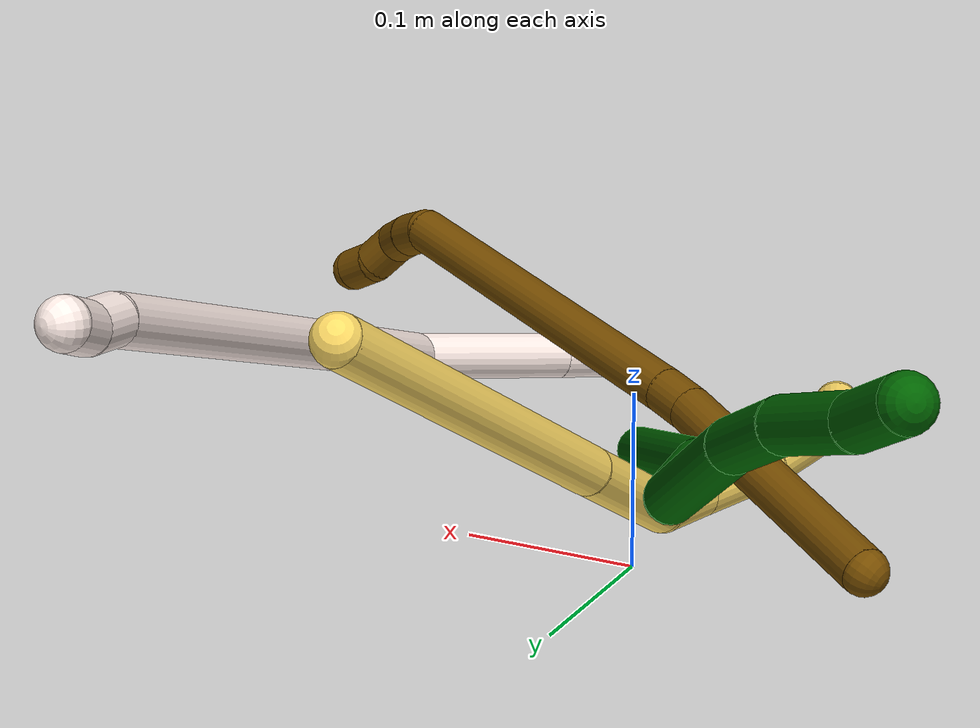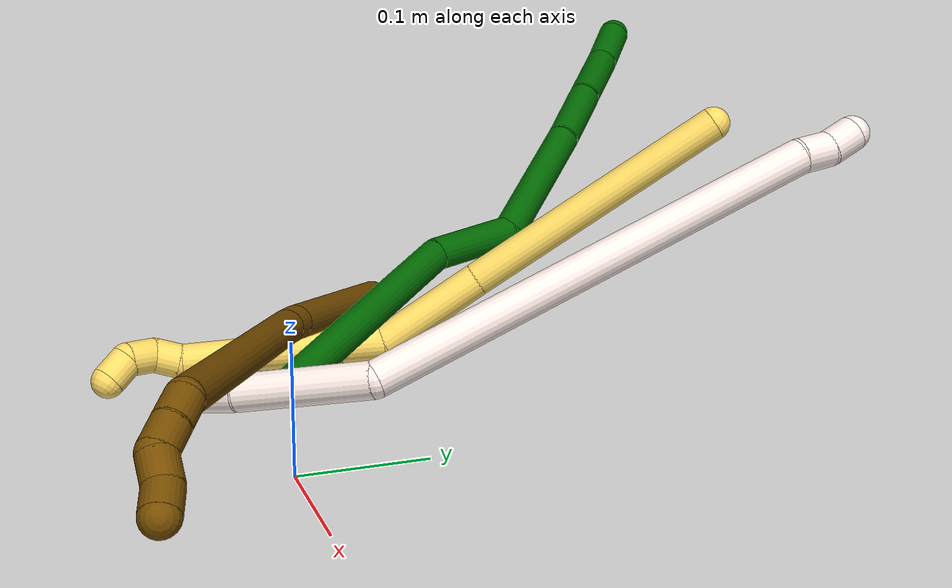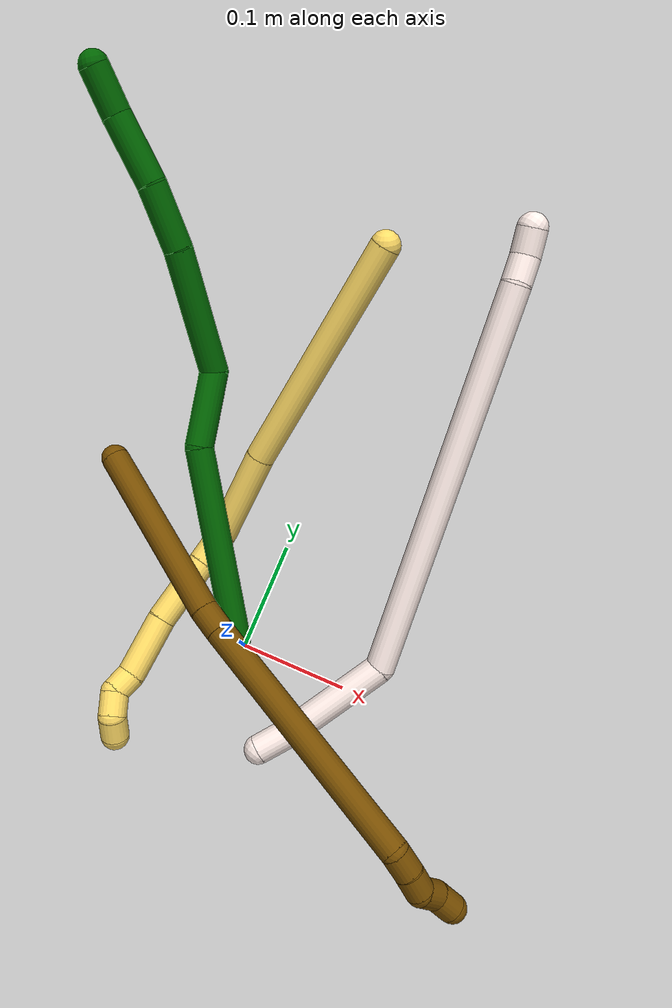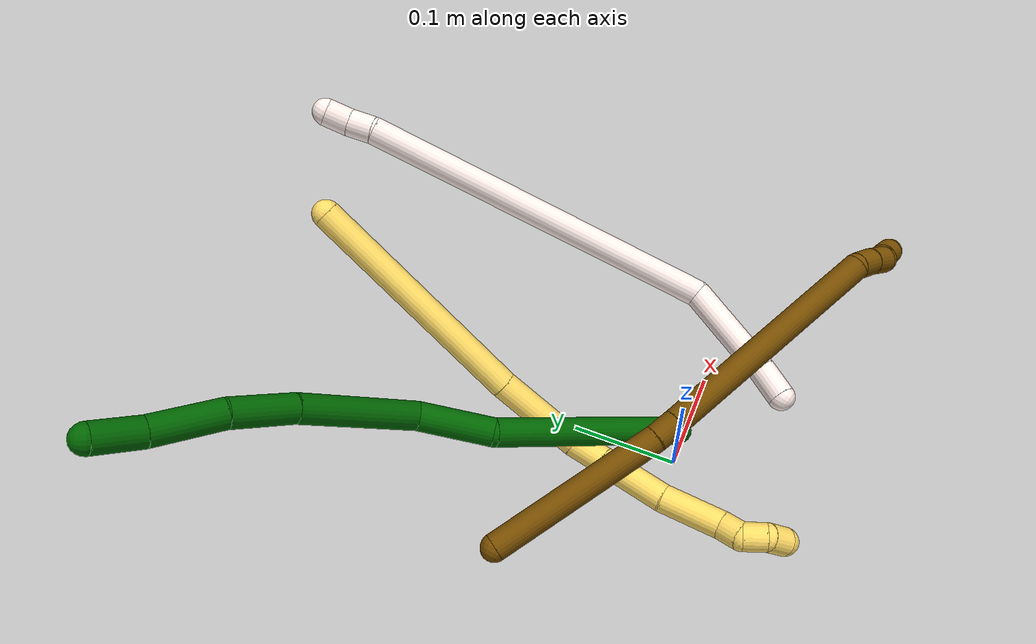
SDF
<sdf version="1.7">
 <world name="default">
  <model name="photoneo_s_sensor">
   <static>1</static>
   <pose>0 0 2 1.57079 1.57079 3.14159</pose>
   <link name="link">
    <inertial><mass>0.1</mass></inertial>
    <sensor name="sensor" type="depth">
     <update_rate>30</update_rate>
     <camera>
      <horizontal_fov>1.22</horizontal_fov>
      <image><width>1920</width><height>1200</height><format>B8G8R8</format></image>
      <clip><near>0.1</near><far>4</far></clip>
      <depth_camera><output>points</output></depth_camera>
     </camera>
     <plugin name="camera_plugin" filename="libgazebo_ros_depth_camera.so">
      <baseline>0.2</baseline>
      <alwaysOn>1</alwaysOn>
      <updateRate>0.0</updateRate>
      <cameraName>camera_ir</cameraName>
      <imageTopicName>/camera/color/image_raw</imageTopicName>
      <cameraInfoTopicName>/camera/color/camera_info</cameraInfoTopicName>
      <depthImageTopicName>/camera/depth/image_raw</depthImageTopicName>
      <depthImageCameraInfoTopicName>/camera/depth/camera_info</depthImageCameraInfoTopicName>
      <pointCloudTopicName>/camera/depth/points</pointCloudTopicName>
      <frameName>fr_optical</frameName>
      <pointCloudCutoff>0.1</pointCloudCutoff>
      <pointCloudCutoffMax>2.0</pointCloudCutoffMax>
      <distortionK1>0</distortionK1>
      <distortionK2>0</distortionK2>
      <distortionK3>0</distortionK3>
      <distortionT1>0</distortionT1>
      <distortionT2>0</distortionT2>
      <CxPrime>0</CxPrime>
      <Cx>0</Cx>
      <Cy>0</Cy>
      <focalLength>0</focalLength>
      <hackBaseline>0</hackBaseline>
     </plugin>
    </sensor>
   </link>
  </model>
  <model name="bin">
   <static>1</static>
   <link name="bottom">
    <collision name="collision-bottom">
     <pose>0 0 -0.01 0 -0 0</pose>
     <geometry><box><size>0.8 0.6 0.02</size></box></geometry>
     <surface>
      <friction><ode><mu>100</mu><mu2>100</mu2></ode></friction>
      <contact><collide_bitmask>65535</collide_bitmask></contact>
     </surface>
    </collision>
   </link>
   <link name="west_wall">
    <collision name="collision-west_wall">
     <pose>-0.41 0 0.1 0 -0 0</pose>
     <geometry><box><size>0.02 0.6 0.2</size></box></geometry>
     <surface>
      <friction><ode><mu>100</mu><mu2>100</mu2></ode></friction>
      <contact><collide_bitmask>65535</collide_bitmask></contact>
     </surface>
    </collision>
   </link>
   <link name="east_wall">
    <collision name="collision-east_wall">
     <pose>0.41 0 0.1 0 -0 0</pose>
     <geometry><box><size>0.02 0.6 0.2</size></box></geometry>
     <surface>
      <friction><ode><mu>100</mu><mu2>100</mu2></ode></friction>
      <contact><collide_bitmask>65535</collide_bitmask></contact>
     </surface>
    </collision>
   </link>
   <link name="south_wall">
    <collision name="collision-south_wall">
     <pose>0 -0.31 0.1 0 -0 0</pose>
     <geometry><box><size>0.8 0.02 0.2</size></box></geometry>
     <surface>
      <friction><ode><mu>100</mu><mu2>100</mu2></ode></friction>
      <contact><collide_bitmask>65535</collide_bitmask></contact>
     </surface>
    </collision>
   </link>
   <link name="north_wall">
    <collision name="collision-north_wall">
     <pose>0 0.31 0.1 0 -0 0</pose>
     <geometry><box><size>0.8 0.02 0.2</size></box></geometry>
     <surface>
      <friction><ode><mu>100</mu><mu2>100</mu2></ode></friction>
      <contact><collide_bitmask>65535</collide_bitmask></contact>
     </surface>
    </collision>
   </link>
  </model>
  <model name="5">
   <static>0</static>
   <link name="5">
    <collision name="collision-cylinder-e_1_1_4">
     <pose>-0.029185 -0.046912 -0.08836 2.65352 -0.283854 -1.04193</pose>
     <geometry><cylinder><radius>0.0125</radius><length>0.208424</length></cylinder></geometry>
     <surface>
      <friction><ode><mu>1.16</mu><mu2>1.16</mu2><slip1>0</slip1><slip2>0</slip2></ode></friction>
      <contact><ode><kp>1e+06</kp><kd>1</kd><max_vel>0</max_vel><min_depth>0.001</min_depth></ode></contact>
     </surface>
    </collision>
    <visual name="visual-cylinder-e_1_1_4">
     <pose>-0.029185 -0.046912 -0.08836 2.65352 -0.283854 -1.04193</pose>
     <geometry><cylinder><radius>0.0125</radius><length>0.208424</length></cylinder></geometry>
     <material><ambient>1 0.858824 0.4 1</ambient></material>
    </visual>
    <collision name="collision-cylinder-e_2_4_5">
     <pose>-0.066932 -0.111934 -0.21287 2.67717 -0.208661 -0.833692</pose>
     <geometry><cylinder><radius>0.0125</radius><length>0.082657</length></cylinder></geometry>
     <surface>
      <friction><ode><mu>1.16</mu><mu2>1.16</mu2><slip1>0</slip1><slip2>0</slip2></ode></friction>
      <contact><ode><kp>1e+06</kp><kd>1</kd><max_vel>0</max_vel><min_depth>0.001</min_depth></ode></contact>
     </surface>
    </collision>
    <visual name="visual-cylinder-e_2_4_5">
     <pose>-0.066932 -0.111934 -0.21287 2.67717 -0.208661 -0.833692</pose>
     <geometry><cylinder><radius>0.0125</radius><length>0.082657</length></cylinder></geometry>
     <material><ambient>1 0.858824 0.4 1</ambient></material>
    </visual>
    <collision name="collision-cylinder-e_3_5_6">
     <pose>-0.075958 -0.142744 -0.258084 2.1907 -0.029768 -0.057808</pose>
     <geometry><cylinder><radius>0.0125</radius><length>0.03122</length></cylinder></geometry>
     <surface>
      <friction><ode><mu>1.16</mu><mu2>1.16</mu2><slip1>0</slip1><slip2>0</slip2></ode></friction>
      <contact><ode><kp>1e+06</kp><kd>1</kd><max_vel>0</max_vel><min_depth>0.001</min_depth></ode></contact>
     </surface>
    </collision>
    <visual name="visual-cylinder-e_3_5_6">
     <pose>-0.075958 -0.142744 -0.258084 2.1907 -0.029768 -0.057808</pose>
     <geometry><cylinder><radius>0.0125</radius><length>0.03122</length></cylinder></geometry>
     <material><ambient>1 0.858824 0.4 1</ambient></material>
    </visual>
    <collision name="collision-cylinder-e_4_6_7">
     <pose>-0.077561 -0.180292 -0.284902 2.19116 -0.037262 -0.072394</pose>
     <geometry><cylinder><radius>0.0125</radius><length>0.061119</length></cylinder></geometry>
     <surface>
      <friction><ode><mu>1.16</mu><mu2>1.16</mu2><slip1>0</slip1><slip2>0</slip2></ode></friction>
      <contact><ode><kp>1e+06</kp><kd>1</kd><max_vel>0</max_vel><min_depth>0.001</min_depth></ode></contact>
     </surface>
    </collision>
    <visual name="visual-cylinder-e_4_6_7">
     <pose>-0.077561 -0.180292 -0.284902 2.19116 -0.037262 -0.072394</pose>
     <geometry><cylinder><radius>0.0125</radius><length>0.061119</length></cylinder></geometry>
     <material><ambient>1 0.858824 0.4 1</ambient></material>
    </visual>
    <collision name="collision-cylinder-e_5_7_8">
     <pose>-0.076194 -0.226793 -0.319433 2.23002 0.091178 0.185592</pose>
     <geometry><cylinder><radius>0.0125</radius><length>0.055014</length></cylinder></geometry>
     <surface>
      <friction><ode><mu>1.16</mu><mu2>1.16</mu2><slip1>0</slip1><slip2>0</slip2></ode></friction>
      <contact><ode><kp>1e+06</kp><kd>1</kd><max_vel>0</max_vel><min_depth>0.001</min_depth></ode></contact>
     </surface>
    </collision>
    <visual name="visual-cylinder-e_5_7_8">
     <pose>-0.076194 -0.226793 -0.319433 2.23002 0.091178 0.185592</pose>
     <geometry><cylinder><radius>0.0125</radius><length>0.055014</length></cylinder></geometry>
     <material><ambient>1 0.858824 0.4 1</ambient></material>
    </visual>
    <collision name="collision-cylinder-e_6_8_9">
     <pose>-0.073394 -0.25803 -0.339181 1.8713 0.02946 0.039969</pose>
     <geometry><cylinder><radius>0.0125</radius><length>0.020075</length></cylinder></geometry>
     <surface>
      <friction><ode><mu>1.16</mu><mu2>1.16</mu2><slip1>0</slip1><slip2>0</slip2></ode></friction>
      <contact><ode><kp>1e+06</kp><kd>1</kd><max_vel>0</max_vel><min_depth>0.001</min_depth></ode></contact>
     </surface>
    </collision>
    <visual name="visual-cylinder-e_6_8_9">
     <pose>-0.073394 -0.25803 -0.339181 1.8713 0.02946 0.039969</pose>
     <geometry><cylinder><radius>0.0125</radius><length>0.020075</length></cylinder></geometry>
     <material><ambient>1 0.858824 0.4 1</ambient></material>
    </visual>
    <collision name="collision-cylinder-e_7_9_10">
     <pose>-0.068171 -0.273944 -0.349193 2.40938 0.479767 1.13575</pose>
     <geometry><cylinder><radius>0.0125</radius><length>0.021349</length></cylinder></geometry>
     <surface>
      <friction><ode><mu>1.16</mu><mu2>1.16</mu2><slip1>0</slip1><slip2>0</slip2></ode></friction>
      <contact><ode><kp>1e+06</kp><kd>1</kd><max_vel>0</max_vel><min_depth>0.001</min_depth></ode></contact>
     </surface>
    </collision>
    <visual name="visual-cylinder-e_7_9_10">
     <pose>-0.068171 -0.273944 -0.349193 2.40938 0.479767 1.13575</pose>
     <geometry><cylinder><radius>0.0125</radius><length>0.021349</length></cylinder></geometry>
     <material><ambient>1 0.858824 0.4 1</ambient></material>
    </visual>
    <collision name="collision-cylinder-e_8_10_2">
     <pose>-0.061902 -0.281503 -0.366141 3.01816 0.133654 1.65051</pose>
     <geometry><cylinder><radius>0.0125</radius><length>0.020143</length></cylinder></geometry>
     <surface>
      <friction><ode><mu>1.16</mu><mu2>1.16</mu2><slip1>0</slip1><slip2>0</slip2></ode></friction>
      <contact><ode><kp>1e+06</kp><kd>1</kd><max_vel>0</max_vel><min_depth>0.001</min_depth></ode></contact>
     </surface>
    </collision>
    <visual name="visual-cylinder-e_8_10_2">
     <pose>-0.061902 -0.281503 -0.366141 3.01816 0.133654 1.65051</pose>
     <geometry><cylinder><radius>0.0125</radius><length>0.020143</length></cylinder></geometry>
     <material><ambient>1 0.858824 0.4 1</ambient></material>
    </visual>
    <collision name="collision-sphere-2">
     <pose>-0.06056 -0.282732 -0.376046 0 -0 0</pose>
     <geometry><sphere><radius>0.0125</radius></sphere></geometry>
     <surface>
      <friction><ode><mu>1.16</mu><mu2>1.16</mu2><slip1>0</slip1><slip2>0</slip2></ode></friction>
      <contact><ode><kp>1e+06</kp><kd>1</kd><max_vel>0</max_vel><min_depth>0.001</min_depth></ode></contact>
     </surface>
    </collision>
    <visual name="visual-sphere-2">
     <pose>-0.06056 -0.282732 -0.376046 0 -0 0</pose>
     <geometry><sphere><radius>0.0125</radius></sphere></geometry>
     <material><ambient>1 0.858824 0.4 1</ambient></material>
    </visual>
    <collision name="collision-sphere-10">
     <pose>-0.063244 -0.280274 -0.356235 0 -0 0</pose>
     <geometry><sphere><radius>0.0125</radius></sphere></geometry>
     <surface>
      <friction><ode><mu>1.16</mu><mu2>1.16</mu2><slip1>0</slip1><slip2>0</slip2></ode></friction>
      <contact><ode><kp>1e+06</kp><kd>1</kd><max_vel>0</max_vel><min_depth>0.001</min_depth></ode></contact>
     </surface>
    </collision>
    <visual name="visual-sphere-10">
     <pose>-0.063244 -0.280274 -0.356235 0 -0 0</pose>
     <geometry><sphere><radius>0.0125</radius></sphere></geometry>
     <material><ambient>1 0.858824 0.4 1</ambient></material>
    </visual>
    <collision name="collision-sphere-9">
     <pose>-0.073099 -0.267613 -0.34215 0 -0 0</pose>
     <geometry><sphere><radius>0.0125</radius></sphere></geometry>
     <surface>
      <friction><ode><mu>1.16</mu><mu2>1.16</mu2><slip1>0</slip1><slip2>0</slip2></ode></friction>
      <contact><ode><kp>1e+06</kp><kd>1</kd><max_vel>0</max_vel><min_depth>0.001</min_depth></ode></contact>
     </surface>
    </collision>
    <visual name="visual-sphere-9">
     <pose>-0.073099 -0.267613 -0.34215 0 -0 0</pose>
     <geometry><sphere><radius>0.0125</radius></sphere></geometry>
     <material><ambient>1 0.858824 0.4 1</ambient></material>
    </visual>
    <collision name="collision-sphere-4">
     <pose>-0.058371 -0.093825 -0.176721 0 -0 0</pose>
     <geometry><sphere><radius>0.0125</radius></sphere></geometry>
     <surface>
      <friction><ode><mu>1.16</mu><mu2>1.16</mu2><slip1>0</slip1><slip2>0</slip2></ode></friction>
      <contact><ode><kp>1e+06</kp><kd>1</kd><max_vel>0</max_vel><min_depth>0.001</min_depth></ode></contact>
     </surface>
    </collision>
    <visual name="visual-sphere-4">
     <pose>-0.058371 -0.093825 -0.176721 0 -0 0</pose>
     <geometry><sphere><radius>0.0125</radius></sphere></geometry>
     <material><ambient>1 0.858824 0.4 1</ambient></material>
    </visual>
    <collision name="collision-sphere-1">
     <geometry><sphere><radius>0.0125</radius></sphere></geometry>
     <surface>
      <friction><ode><mu>1.16</mu><mu2>1.16</mu2><slip1>0</slip1><slip2>0</slip2></ode></friction>
      <contact><ode><kp>1e+06</kp><kd>1</kd><max_vel>0</max_vel><min_depth>0.001</min_depth></ode></contact>
     </surface>
    </collision>
    <visual name="visual-sphere-1">
     <geometry><sphere><radius>0.0125</radius></sphere></geometry>
     <material><ambient>1 0.858824 0.4 1</ambient></material>
    </visual>
    <collision name="collision-sphere-8">
     <pose>-0.07369 -0.248446 -0.336211 0 -0 0</pose>
     <geometry><sphere><radius>0.0125</radius></sphere></geometry>
     <surface>
      <friction><ode><mu>1.16</mu><mu2>1.16</mu2><slip1>0</slip1><slip2>0</slip2></ode></friction>
      <contact><ode><kp>1e+06</kp><kd>1</kd><max_vel>0</max_vel><min_depth>0.001</min_depth></ode></contact>
     </surface>
    </collision>
    <visual name="visual-sphere-8">
     <pose>-0.07369 -0.248446 -0.336211 0 -0 0</pose>
     <geometry><sphere><radius>0.0125</radius></sphere></geometry>
     <material><ambient>1 0.858824 0.4 1</ambient></material>
    </visual>
    <collision name="collision-sphere-5">
     <pose>-0.075493 -0.130044 -0.249019 0 -0 0</pose>
     <geometry><sphere><radius>0.0125</radius></sphere></geometry>
     <surface>
      <friction><ode><mu>1.16</mu><mu2>1.16</mu2><slip1>0</slip1><slip2>0</slip2></ode></friction>
      <contact><ode><kp>1e+06</kp><kd>1</kd><max_vel>0</max_vel><min_depth>0.001</min_depth></ode></contact>
     </surface>
    </collision>
    <visual name="visual-sphere-5">
     <pose>-0.075493 -0.130044 -0.249019 0 -0 0</pose>
     <geometry><sphere><radius>0.0125</radius></sphere></geometry>
     <material><ambient>1 0.858824 0.4 1</ambient></material>
    </visual>
    <collision name="collision-sphere-6">
     <pose>-0.076422 -0.155444 -0.267149 0 -0 0</pose>
     <geometry><sphere><radius>0.0125</radius></sphere></geometry>
     <surface>
      <friction><ode><mu>1.16</mu><mu2>1.16</mu2><slip1>0</slip1><slip2>0</slip2></ode></friction>
      <contact><ode><kp>1e+06</kp><kd>1</kd><max_vel>0</max_vel><min_depth>0.001</min_depth></ode></contact>
     </surface>
    </collision>
    <visual name="visual-sphere-6">
     <pose>-0.076422 -0.155444 -0.267149 0 -0 0</pose>
     <geometry><sphere><radius>0.0125</radius></sphere></geometry>
     <material><ambient>1 0.858824 0.4 1</ambient></material>
    </visual>
    <collision name="collision-sphere-7">
     <pose>-0.078699 -0.20514 -0.302655 0 -0 0</pose>
     <geometry><sphere><radius>0.0125</radius></sphere></geometry>
     <surface>
      <friction><ode><mu>1.16</mu><mu2>1.16</mu2><slip1>0</slip1><slip2>0</slip2></ode></friction>
      <contact><ode><kp>1e+06</kp><kd>1</kd><max_vel>0</max_vel><min_depth>0.001</min_depth></ode></contact>
     </surface>
    </collision>
    <visual name="visual-sphere-7">
     <pose>-0.078699 -0.20514 -0.302655 0 -0 0</pose>
     <geometry><sphere><radius>0.0125</radius></sphere></geometry>
     <material><ambient>1 0.858824 0.4 1</ambient></material>
    </visual>
    <inertial>
     <pose>-0.054189 -0.127362 -0.201388 0 -0 0</pose>
     <mass>0.5</mass>
     <inertia>
      <ixx>-0.000224</ixx>
      <ixy>0</ixy>
      <ixz>0</ixz>
      <iyy>-0.000991</iyy>
      <iyz>0</iyz>
      <izz>0.000594</izz>
     </inertia>
    </inertial>
   </link>
   <pose>-0.011416 0.323451 0.229031 -0.582484 -0.54864 -0.199859</pose>
  </model>
  <model name="6">
   <static>0</static>
   <link name="6">
    <collision name="collision-cylinder-e_1_1_4">
     <pose>-0.00525 0.003402 0.086305 -0.039395 -0.060711 0.001196</pose>
     <geometry><cylinder><radius>0.0125</radius><length>0.173063</length></cylinder></geometry>
     <surface>
      <friction><ode><mu>1.16</mu><mu2>1.16</mu2><slip1>0</slip1><slip2>0</slip2></ode></friction>
      <contact><ode><kp>1e+06</kp><kd>1</kd><max_vel>0</max_vel><min_depth>0.001</min_depth></ode></contact>
     </surface>
    </collision>
    <visual name="visual-cylinder-e_1_1_4">
     <pose>-0.00525 0.003402 0.086305 -0.039395 -0.060711 0.001196</pose>
     <geometry><cylinder><radius>0.0125</radius><length>0.173063</length></cylinder></geometry>
     <material><ambient>0 0.392157 0.003922 1</ambient></material>
    </visual>
    <collision name="collision-cylinder-e_2_4_5">
     <pose>-0.024221 0.014282 0.201861 -0.250297 -0.426548 0.054477</pose>
     <geometry><cylinder><radius>0.0125</radius><length>0.066328</length></cylinder></geometry>
     <surface>
      <friction><ode><mu>1.16</mu><mu2>1.16</mu2><slip1>0</slip1><slip2>0</slip2></ode></friction>
      <contact><ode><kp>1e+06</kp><kd>1</kd><max_vel>0</max_vel><min_depth>0.001</min_depth></ode></contact>
     </surface>
    </collision>
    <visual name="visual-cylinder-e_2_4_5">
     <pose>-0.024221 0.014282 0.201861 -0.250297 -0.426548 0.054477</pose>
     <geometry><cylinder><radius>0.0125</radius><length>0.066328</length></cylinder></geometry>
     <material><ambient>0 0.392157 0.003922 1</ambient></material>
    </visual>
    <collision name="collision-cylinder-e_3_5_6">
     <pose>-0.027478 0.027995 0.283432 -0.118607 0.196039 -0.011677</pose>
     <geometry><cylinder><radius>0.0125</radius><length>0.107437</length></cylinder></geometry>
     <surface>
      <friction><ode><mu>1.16</mu><mu2>1.16</mu2><slip1>0</slip1><slip2>0</slip2></ode></friction>
      <contact><ode><kp>1e+06</kp><kd>1</kd><max_vel>0</max_vel><min_depth>0.001</min_depth></ode></contact>
     </surface>
    </collision>
    <visual name="visual-cylinder-e_3_5_6">
     <pose>-0.027478 0.027995 0.283432 -0.118607 0.196039 -0.011677</pose>
     <geometry><cylinder><radius>0.0125</radius><length>0.107437</length></cylinder></geometry>
     <material><ambient>0 0.392157 0.003922 1</ambient></material>
    </visual>
    <collision name="collision-cylinder-e_4_6_7">
     <pose>-0.011606 0.033913 0.362531 0.011835 0.199297 0.001183</pose>
     <geometry><cylinder><radius>0.0125</radius><length>0.054643</length></cylinder></geometry>
     <surface>
      <friction><ode><mu>1.16</mu><mu2>1.16</mu2><slip1>0</slip1><slip2>0</slip2></ode></friction>
      <contact><ode><kp>1e+06</kp><kd>1</kd><max_vel>0</max_vel><min_depth>0.001</min_depth></ode></contact>
     </surface>
    </collision>
    <visual name="visual-cylinder-e_4_6_7">
     <pose>-0.011606 0.033913 0.362531 0.011835 0.199297 0.001183</pose>
     <geometry><cylinder><radius>0.0125</radius><length>0.054643</length></cylinder></geometry>
     <material><ambient>0 0.392157 0.003922 1</ambient></material>
    </visual>
    <collision name="collision-cylinder-e_5_7_8">
     <pose>-0.002097 0.02863 0.417896 0.17199 0.140369 0.012121</pose>
     <geometry><cylinder><radius>0.0125</radius><length>0.058606</length></cylinder></geometry>
     <surface>
      <friction><ode><mu>1.16</mu><mu2>1.16</mu2><slip1>0</slip1><slip2>0</slip2></ode></friction>
      <contact><ode><kp>1e+06</kp><kd>1</kd><max_vel>0</max_vel><min_depth>0.001</min_depth></ode></contact>
     </surface>
    </collision>
    <visual name="visual-cylinder-e_5_7_8">
     <pose>-0.002097 0.02863 0.417896 0.17199 0.140369 0.012121</pose>
     <geometry><cylinder><radius>0.0125</radius><length>0.058606</length></cylinder></geometry>
     <material><ambient>0 0.392157 0.003922 1</ambient></material>
    </visual>
    <collision name="collision-cylinder-e_6_8_2">
     <pose>0.006645 0.022769 0.465877 0.04614 0.234712 0.005441</pose>
     <geometry><cylinder><radius>0.0125</radius><length>0.039923</length></cylinder></geometry>
     <surface>
      <friction><ode><mu>1.16</mu><mu2>1.16</mu2><slip1>0</slip1><slip2>0</slip2></ode></friction>
      <contact><ode><kp>1e+06</kp><kd>1</kd><max_vel>0</max_vel><min_depth>0.001</min_depth></ode></contact>
     </surface>
    </collision>
    <visual name="visual-cylinder-e_6_8_2">
     <pose>0.006645 0.022769 0.465877 0.04614 0.234712 0.005441</pose>
     <geometry><cylinder><radius>0.0125</radius><length>0.039923</length></cylinder></geometry>
     <material><ambient>0 0.392157 0.003922 1</ambient></material>
    </visual>
    <collision name="collision-sphere-2">
     <pose>0.011288 0.021873 0.48527 0 -0 0</pose>
     <geometry><sphere><radius>0.0125</radius></sphere></geometry>
     <surface>
      <friction><ode><mu>1.16</mu><mu2>1.16</mu2><slip1>0</slip1><slip2>0</slip2></ode></friction>
      <contact><ode><kp>1e+06</kp><kd>1</kd><max_vel>0</max_vel><min_depth>0.001</min_depth></ode></contact>
     </surface>
    </collision>
    <visual name="visual-sphere-2">
     <pose>0.011288 0.021873 0.48527 0 -0 0</pose>
     <geometry><sphere><radius>0.0125</radius></sphere></geometry>
     <material><ambient>0 0.392157 0.003922 1</ambient></material>
    </visual>
    <collision name="collision-sphere-4">
     <pose>-0.0105 0.006803 0.17261 0 -0 0</pose>
     <geometry><sphere><radius>0.0125</radius></sphere></geometry>
     <surface>
      <friction><ode><mu>1.16</mu><mu2>1.16</mu2><slip1>0</slip1><slip2>0</slip2></ode></friction>
      <contact><ode><kp>1e+06</kp><kd>1</kd><max_vel>0</max_vel><min_depth>0.001</min_depth></ode></contact>
     </surface>
    </collision>
    <visual name="visual-sphere-4">
     <pose>-0.0105 0.006803 0.17261 0 -0 0</pose>
     <geometry><sphere><radius>0.0125</radius></sphere></geometry>
     <material><ambient>0 0.392157 0.003922 1</ambient></material>
    </visual>
    <collision name="collision-sphere-1">
     <geometry><sphere><radius>0.0125</radius></sphere></geometry>
     <surface>
      <friction><ode><mu>1.16</mu><mu2>1.16</mu2><slip1>0</slip1><slip2>0</slip2></ode></friction>
      <contact><ode><kp>1e+06</kp><kd>1</kd><max_vel>0</max_vel><min_depth>0.001</min_depth></ode></contact>
     </surface>
    </collision>
    <visual name="visual-sphere-1">
     <geometry><sphere><radius>0.0125</radius></sphere></geometry>
     <material><ambient>0 0.392157 0.003922 1</ambient></material>
    </visual>
    <collision name="collision-sphere-8">
     <pose>0.002003 0.023664 0.446483 0 -0 0</pose>
     <geometry><sphere><radius>0.0125</radius></sphere></geometry>
     <surface>
      <friction><ode><mu>1.16</mu><mu2>1.16</mu2><slip1>0</slip1><slip2>0</slip2></ode></friction>
      <contact><ode><kp>1e+06</kp><kd>1</kd><max_vel>0</max_vel><min_depth>0.001</min_depth></ode></contact>
     </surface>
    </collision>
    <visual name="visual-sphere-8">
     <pose>0.002003 0.023664 0.446483 0 -0 0</pose>
     <geometry><sphere><radius>0.0125</radius></sphere></geometry>
     <material><ambient>0 0.392157 0.003922 1</ambient></material>
    </visual>
    <collision name="collision-sphere-5">
     <pose>-0.037942 0.02176 0.231113 0 -0 0</pose>
     <geometry><sphere><radius>0.0125</radius></sphere></geometry>
     <surface>
      <friction><ode><mu>1.16</mu><mu2>1.16</mu2><slip1>0</slip1><slip2>0</slip2></ode></friction>
      <contact><ode><kp>1e+06</kp><kd>1</kd><max_vel>0</max_vel><min_depth>0.001</min_depth></ode></contact>
     </surface>
    </collision>
    <visual name="visual-sphere-5">
     <pose>-0.037942 0.02176 0.231113 0 -0 0</pose>
     <geometry><sphere><radius>0.0125</radius></sphere></geometry>
     <material><ambient>0 0.392157 0.003922 1</ambient></material>
    </visual>
    <collision name="collision-sphere-6">
     <pose>-0.017015 0.03423 0.335752 0 -0 0</pose>
     <geometry><sphere><radius>0.0125</radius></sphere></geometry>
     <surface>
      <friction><ode><mu>1.16</mu><mu2>1.16</mu2><slip1>0</slip1><slip2>0</slip2></ode></friction>
      <contact><ode><kp>1e+06</kp><kd>1</kd><max_vel>0</max_vel><min_depth>0.001</min_depth></ode></contact>
     </surface>
    </collision>
    <visual name="visual-sphere-6">
     <pose>-0.017015 0.03423 0.335752 0 -0 0</pose>
     <geometry><sphere><radius>0.0125</radius></sphere></geometry>
     <material><ambient>0 0.392157 0.003922 1</ambient></material>
    </visual>
    <collision name="collision-sphere-7">
     <pose>-0.006197 0.033596 0.389309 0 -0 0</pose>
     <geometry><sphere><radius>0.0125</radius></sphere></geometry>
     <surface>
      <friction><ode><mu>1.16</mu><mu2>1.16</mu2><slip1>0</slip1><slip2>0</slip2></ode></friction>
      <contact><ode><kp>1e+06</kp><kd>1</kd><max_vel>0</max_vel><min_depth>0.001</min_depth></ode></contact>
     </surface>
    </collision>
    <visual name="visual-sphere-7">
     <pose>-0.006197 0.033596 0.389309 0 -0 0</pose>
     <geometry><sphere><radius>0.0125</radius></sphere></geometry>
     <material><ambient>0 0.392157 0.003922 1</ambient></material>
    </visual>
    <inertial>
     <pose>-0.011918 0.017967 0.243353 0 -0 0</pose>
     <mass>0.5</mass>
     <inertia>
      <ixx>0.000611</ixx>
      <ixy>0</ixy>
      <ixz>0</ixz>
      <iyy>0.000615</iyy>
      <iyz>0</iyz>
      <izz>1.5e-05</izz>
     </inertia>
    </inertial>
   </link>
   <pose>-0.004413 0.000606 0.068788 1.0371 -0.834598 -2.06136</pose>
  </model>
  <model name="11">
   <static>0</static>
   <link name="11">
    <collision name="collision-cylinder-e_1_1_4">
     <pose>-0.005618 0.002359 0.014187 -0.16477 -0.372429 0.03111</pose>
     <geometry><cylinder><radius>0.0125</radius><length>0.03088</length></cylinder></geometry>
     <surface>
      <friction><ode><mu>1.16</mu><mu2>1.16</mu2><slip1>0</slip1><slip2>0</slip2></ode></friction>
      <contact><ode><kp>1e+06</kp><kd>1</kd><max_vel>0</max_vel><min_depth>0.001</min_depth></ode></contact>
     </surface>
    </collision>
    <visual name="visual-cylinder-e_1_1_4">
     <pose>-0.005618 0.002359 0.014187 -0.16477 -0.372429 0.03111</pose>
     <geometry><cylinder><radius>0.0125</radius><length>0.03088</length></cylinder></geometry>
     <material><ambient>1 0.933333 0.909804 1</ambient></material>
    </visual>
    <collision name="collision-cylinder-e_2_4_5">
     <pose>-0.022857 0.011974 0.072901 -0.161534 -0.252084 0.020513</pose>
     <geometry><cylinder><radius>0.0125</radius><length>0.093174</length></cylinder></geometry>
     <surface>
      <friction><ode><mu>1.16</mu><mu2>1.16</mu2><slip1>0</slip1><slip2>0</slip2></ode></friction>
      <contact><ode><kp>1e+06</kp><kd>1</kd><max_vel>0</max_vel><min_depth>0.001</min_depth></ode></contact>
     </surface>
    </collision>
    <visual name="visual-cylinder-e_2_4_5">
     <pose>-0.022857 0.011974 0.072901 -0.161534 -0.252084 0.020513</pose>
     <geometry><cylinder><radius>0.0125</radius><length>0.093174</length></cylinder></geometry>
     <material><ambient>1 0.933333 0.909804 1</ambient></material>
    </visual>
    <collision name="collision-cylinder-e_3_5_6">
     <pose>0.026101 0.0403 0.269772 -0.137436 0.375225 -0.026131</pose>
     <geometry><cylinder><radius>0.0125</radius><length>0.330588</length></cylinder></geometry>
     <surface>
      <friction><ode><mu>1.16</mu><mu2>1.16</mu2><slip1>0</slip1><slip2>0</slip2></ode></friction>
      <contact><ode><kp>1e+06</kp><kd>1</kd><max_vel>0</max_vel><min_depth>0.001</min_depth></ode></contact>
     </surface>
    </collision>
    <visual name="visual-cylinder-e_3_5_6">
     <pose>0.026101 0.0403 0.269772 -0.137436 0.375225 -0.026131</pose>
     <geometry><cylinder><radius>0.0125</radius><length>0.330588</length></cylinder></geometry>
     <material><ambient>1 0.933333 0.909804 1</ambient></material>
    </visual>
    <collision name="collision-cylinder-e_4_6_7">
     <pose>0.090295 0.060368 0.433019 0.091646 0.31907 0.014756</pose>
     <geometry><cylinder><radius>0.0125</radius><length>0.023064</length></cylinder></geometry>
     <surface>
      <friction><ode><mu>1.16</mu><mu2>1.16</mu2><slip1>0</slip1><slip2>0</slip2></ode></friction>
      <contact><ode><kp>1e+06</kp><kd>1</kd><max_vel>0</max_vel><min_depth>0.001</min_depth></ode></contact>
     </surface>
    </collision>
    <visual name="visual-cylinder-e_4_6_7">
     <pose>0.090295 0.060368 0.433019 0.091646 0.31907 0.014756</pose>
     <geometry><cylinder><radius>0.0125</radius><length>0.023064</length></cylinder></geometry>
     <material><ambient>1 0.933333 0.909804 1</ambient></material>
    </visual>
    <collision name="collision-cylinder-e_5_7_2">
     <pose>0.099083 0.060913 0.453676 -0.157323 0.482283 -0.038765</pose>
     <geometry><cylinder><radius>0.0125</radius><length>0.022294</length></cylinder></geometry>
     <surface>
      <friction><ode><mu>1.16</mu><mu2>1.16</mu2><slip1>0</slip1><slip2>0</slip2></ode></friction>
      <contact><ode><kp>1e+06</kp><kd>1</kd><max_vel>0</max_vel><min_depth>0.001</min_depth></ode></contact>
     </surface>
    </collision>
    <visual name="visual-cylinder-e_5_7_2">
     <pose>0.099083 0.060913 0.453676 -0.157323 0.482283 -0.038765</pose>
     <geometry><cylinder><radius>0.0125</radius><length>0.022294</length></cylinder></geometry>
     <material><ambient>1 0.933333 0.909804 1</ambient></material>
    </visual>
    <collision name="collision-sphere-2">
     <pose>0.104253 0.062461 0.46343 0 -0 0</pose>
     <geometry><sphere><radius>0.0125</radius></sphere></geometry>
     <surface>
      <friction><ode><mu>1.16</mu><mu2>1.16</mu2><slip1>0</slip1><slip2>0</slip2></ode></friction>
      <contact><ode><kp>1e+06</kp><kd>1</kd><max_vel>0</max_vel><min_depth>0.001</min_depth></ode></contact>
     </surface>
    </collision>
    <visual name="visual-sphere-2">
     <pose>0.104253 0.062461 0.46343 0 -0 0</pose>
     <geometry><sphere><radius>0.0125</radius></sphere></geometry>
     <material><ambient>1 0.933333 0.909804 1</ambient></material>
    </visual>
    <collision name="collision-sphere-7">
     <pose>0.093913 0.059366 0.443923 0 -0 0</pose>
     <geometry><sphere><radius>0.0125</radius></sphere></geometry>
     <surface>
      <friction><ode><mu>1.16</mu><mu2>1.16</mu2><slip1>0</slip1><slip2>0</slip2></ode></friction>
      <contact><ode><kp>1e+06</kp><kd>1</kd><max_vel>0</max_vel><min_depth>0.001</min_depth></ode></contact>
     </surface>
    </collision>
    <visual name="visual-sphere-7">
     <pose>0.093913 0.059366 0.443923 0 -0 0</pose>
     <geometry><sphere><radius>0.0125</radius></sphere></geometry>
     <material><ambient>1 0.933333 0.909804 1</ambient></material>
    </visual>
    <collision name="collision-sphere-6">
     <pose>0.086678 0.06137 0.422115 0 -0 0</pose>
     <geometry><sphere><radius>0.0125</radius></sphere></geometry>
     <surface>
      <friction><ode><mu>1.16</mu><mu2>1.16</mu2><slip1>0</slip1><slip2>0</slip2></ode></friction>
      <contact><ode><kp>1e+06</kp><kd>1</kd><max_vel>0</max_vel><min_depth>0.001</min_depth></ode></contact>
     </surface>
    </collision>
    <visual name="visual-sphere-6">
     <pose>0.086678 0.06137 0.422115 0 -0 0</pose>
     <geometry><sphere><radius>0.0125</radius></sphere></geometry>
     <material><ambient>1 0.933333 0.909804 1</ambient></material>
    </visual>
    <collision name="collision-sphere-5">
     <pose>-0.034477 0.01923 0.117429 0 -0 0</pose>
     <geometry><sphere><radius>0.0125</radius></sphere></geometry>
     <surface>
      <friction><ode><mu>1.16</mu><mu2>1.16</mu2><slip1>0</slip1><slip2>0</slip2></ode></friction>
      <contact><ode><kp>1e+06</kp><kd>1</kd><max_vel>0</max_vel><min_depth>0.001</min_depth></ode></contact>
     </surface>
    </collision>
    <visual name="visual-sphere-5">
     <pose>-0.034477 0.01923 0.117429 0 -0 0</pose>
     <geometry><sphere><radius>0.0125</radius></sphere></geometry>
     <material><ambient>1 0.933333 0.909804 1</ambient></material>
    </visual>
    <collision name="collision-sphere-1">
     <geometry><sphere><radius>0.0125</radius></sphere></geometry>
     <surface>
      <friction><ode><mu>1.16</mu><mu2>1.16</mu2><slip1>0</slip1><slip2>0</slip2></ode></friction>
      <contact><ode><kp>1e+06</kp><kd>1</kd><max_vel>0</max_vel><min_depth>0.001</min_depth></ode></contact>
     </surface>
    </collision>
    <visual name="visual-sphere-1">
     <geometry><sphere><radius>0.0125</radius></sphere></geometry>
     <material><ambient>1 0.933333 0.909804 1</ambient></material>
    </visual>
    <collision name="collision-sphere-4">
     <pose>-0.011237 0.004718 0.028374 0 -0 0</pose>
     <geometry><sphere><radius>0.0125</radius></sphere></geometry>
     <surface>
      <friction><ode><mu>1.16</mu><mu2>1.16</mu2><slip1>0</slip1><slip2>0</slip2></ode></friction>
      <contact><ode><kp>1e+06</kp><kd>1</kd><max_vel>0</max_vel><min_depth>0.001</min_depth></ode></contact>
     </surface>
    </collision>
    <visual name="visual-sphere-4">
     <pose>-0.011237 0.004718 0.028374 0 -0 0</pose>
     <geometry><sphere><radius>0.0125</radius></sphere></geometry>
     <material><ambient>1 0.933333 0.909804 1</ambient></material>
    </visual>
    <inertial>
     <pose>0.021234 0.034523 0.23303 0 -0 0</pose>
     <mass>0.5</mass>
     <inertia>
      <ixx>0.002824</ixx>
      <ixy>0</ixy>
      <ixz>0</ixz>
      <iyy>0.003008</iyy>
      <iyz>0</iyz>
      <izz>-0.001451</izz>
     </inertia>
    </inertial>
   </link>
   <pose>0.050828 -0.076229 0.090675 1.44707 -0.339334 2.93063</pose>
  </model>
  <model name="12">
   <static>0</static>
   <link name="12">
    <collision name="collision-cylinder-e_1_1_4">
     <pose>0.019607 -0.033442 0.072798 0.430633 0.240028 0.052737</pose>
     <geometry><cylinder><radius>0.0125</radius><length>0.164953</length></cylinder></geometry>
     <surface>
      <friction><ode><mu>1.16</mu><mu2>1.16</mu2><slip1>0</slip1><slip2>0</slip2></ode></friction>
      <contact><ode><kp>1e+06</kp><kd>1</kd><max_vel>0</max_vel><min_depth>0.001</min_depth></ode></contact>
     </surface>
    </collision>
    <visual name="visual-cylinder-e_1_1_4">
     <pose>0.019607 -0.033442 0.072798 0.430633 0.240028 0.052737</pose>
     <geometry><cylinder><radius>0.0125</radius><length>0.164953</length></cylinder></geometry>
     <material><ambient>0.466667 0.301961 0 1</ambient></material>
    </visual>
    <collision name="collision-cylinder-e_2_4_5">
     <pose>0.042054 -0.070427 0.156079 0.325847 0.251176 0.041501</pose>
     <geometry><cylinder><radius>0.0125</radius><length>0.022848</length></cylinder></geometry>
     <surface>
      <friction><ode><mu>1.16</mu><mu2>1.16</mu2><slip1>0</slip1><slip2>0</slip2></ode></friction>
      <contact><ode><kp>1e+06</kp><kd>1</kd><max_vel>0</max_vel><min_depth>0.001</min_depth></ode></contact>
     </surface>
    </collision>
    <visual name="visual-cylinder-e_2_4_5">
     <pose>0.042054 -0.070427 0.156079 0.325847 0.251176 0.041501</pose>
     <geometry><cylinder><radius>0.0125</radius><length>0.022848</length></cylinder></geometry>
     <material><ambient>0.466667 0.301961 0 1</ambient></material>
    </visual>
    <collision name="collision-cylinder-e_3_5_6">
     <pose>0.075648 -0.105495 0.271739 0.291219 0.273102 0.040295</pose>
     <geometry><cylinder><radius>0.0125</radius><length>0.228051</length></cylinder></geometry>
     <surface>
      <friction><ode><mu>1.16</mu><mu2>1.16</mu2><slip1>0</slip1><slip2>0</slip2></ode></friction>
      <contact><ode><kp>1e+06</kp><kd>1</kd><max_vel>0</max_vel><min_depth>0.001</min_depth></ode></contact>
     </surface>
    </collision>
    <visual name="visual-cylinder-e_3_5_6">
     <pose>0.075648 -0.105495 0.271739 0.291219 0.273102 0.040295</pose>
     <geometry><cylinder><radius>0.0125</radius><length>0.228051</length></cylinder></geometry>
     <material><ambient>0.466667 0.301961 0 1</ambient></material>
    </visual>
    <collision name="collision-cylinder-e_4_6_7">
     <pose>0.114184 -0.139798 0.384183 0.365 0.785467 0.152607</pose>
     <geometry><cylinder><radius>0.0125</radius><length>0.022007</length></cylinder></geometry>
     <surface>
      <friction><ode><mu>1.16</mu><mu2>1.16</mu2><slip1>0</slip1><slip2>0</slip2></ode></friction>
      <contact><ode><kp>1e+06</kp><kd>1</kd><max_vel>0</max_vel><min_depth>0.001</min_depth></ode></contact>
     </surface>
    </collision>
    <visual name="visual-cylinder-e_4_6_7">
     <pose>0.114184 -0.139798 0.384183 0.365 0.785467 0.152607</pose>
     <geometry><cylinder><radius>0.0125</radius><length>0.022007</length></cylinder></geometry>
     <material><ambient>0.466667 0.301961 0 1</ambient></material>
    </visual>
    <collision name="collision-cylinder-e_5_7_8">
     <pose>0.130175 -0.145416 0.39748 0.440327 0.888865 0.21234</pose>
     <geometry><cylinder><radius>0.0125</radius><length>0.02115</length></cylinder></geometry>
     <surface>
      <friction><ode><mu>1.16</mu><mu2>1.16</mu2><slip1>0</slip1><slip2>0</slip2></ode></friction>
      <contact><ode><kp>1e+06</kp><kd>1</kd><max_vel>0</max_vel><min_depth>0.001</min_depth></ode></contact>
     </surface>
    </collision>
    <visual name="visual-cylinder-e_5_7_8">
     <pose>0.130175 -0.145416 0.39748 0.440327 0.888865 0.21234</pose>
     <geometry><cylinder><radius>0.0125</radius><length>0.02115</length></cylinder></geometry>
     <material><ambient>0.466667 0.301961 0 1</ambient></material>
    </visual>
    <collision name="collision-cylinder-e_6_8_9">
     <pose>0.147185 -0.145137 0.407706 -0.639324 1.03461 -0.372325</pose>
     <geometry><cylinder><radius>0.0125</radius><length>0.020472</length></cylinder></geometry>
     <surface>
      <friction><ode><mu>1.16</mu><mu2>1.16</mu2><slip1>0</slip1><slip2>0</slip2></ode></friction>
      <contact><ode><kp>1e+06</kp><kd>1</kd><max_vel>0</max_vel><min_depth>0.001</min_depth></ode></contact>
     </surface>
    </collision>
    <visual name="visual-cylinder-e_6_8_9">
     <pose>0.147185 -0.145137 0.407706 -0.639324 1.03461 -0.372325</pose>
     <geometry><cylinder><radius>0.0125</radius><length>0.020472</length></cylinder></geometry>
     <material><ambient>0.466667 0.301961 0 1</ambient></material>
    </visual>
    <collision name="collision-cylinder-e_7_9_2">
     <pose>0.163683 -0.141894 0.418683 -0.018125 0.848577 -0.008188</pose>
     <geometry><cylinder><radius>0.0125</radius><length>0.020518</length></cylinder></geometry>
     <surface>
      <friction><ode><mu>1.16</mu><mu2>1.16</mu2><slip1>0</slip1><slip2>0</slip2></ode></friction>
      <contact><ode><kp>1e+06</kp><kd>1</kd><max_vel>0</max_vel><min_depth>0.001</min_depth></ode></contact>
     </surface>
    </collision>
    <visual name="visual-cylinder-e_7_9_2">
     <pose>0.163683 -0.141894 0.418683 -0.018125 0.848577 -0.008188</pose>
     <geometry><cylinder><radius>0.0125</radius><length>0.020518</length></cylinder></geometry>
     <material><ambient>0.466667 0.301961 0 1</ambient></material>
    </visual>
    <collision name="collision-sphere-2">
     <pose>0.17138 -0.141771 0.425464 0 -0 0</pose>
     <geometry><sphere><radius>0.0125</radius></sphere></geometry>
     <surface>
      <friction><ode><mu>1.16</mu><mu2>1.16</mu2><slip1>0</slip1><slip2>0</slip2></ode></friction>
      <contact><ode><kp>1e+06</kp><kd>1</kd><max_vel>0</max_vel><min_depth>0.001</min_depth></ode></contact>
     </surface>
    </collision>
    <visual name="visual-sphere-2">
     <pose>0.17138 -0.141771 0.425464 0 -0 0</pose>
     <geometry><sphere><radius>0.0125</radius></sphere></geometry>
     <material><ambient>0.466667 0.301961 0 1</ambient></material>
    </visual>
    <collision name="collision-sphere-9">
     <pose>0.155985 -0.142017 0.411903 0 -0 0</pose>
     <geometry><sphere><radius>0.0125</radius></sphere></geometry>
     <surface>
      <friction><ode><mu>1.16</mu><mu2>1.16</mu2><slip1>0</slip1><slip2>0</slip2></ode></friction>
      <contact><ode><kp>1e+06</kp><kd>1</kd><max_vel>0</max_vel><min_depth>0.001</min_depth></ode></contact>
     </surface>
    </collision>
    <visual name="visual-sphere-9">
     <pose>0.155985 -0.142017 0.411903 0 -0 0</pose>
     <geometry><sphere><radius>0.0125</radius></sphere></geometry>
     <material><ambient>0.466667 0.301961 0 1</ambient></material>
    </visual>
    <collision name="collision-sphere-4">
     <pose>0.039214 -0.066885 0.145596 0 -0 0</pose>
     <geometry><sphere><radius>0.0125</radius></sphere></geometry>
     <surface>
      <friction><ode><mu>1.16</mu><mu2>1.16</mu2><slip1>0</slip1><slip2>0</slip2></ode></friction>
      <contact><ode><kp>1e+06</kp><kd>1</kd><max_vel>0</max_vel><min_depth>0.001</min_depth></ode></contact>
     </surface>
    </collision>
    <visual name="visual-sphere-4">
     <pose>0.039214 -0.066885 0.145596 0 -0 0</pose>
     <geometry><sphere><radius>0.0125</radius></sphere></geometry>
     <material><ambient>0.466667 0.301961 0 1</ambient></material>
    </visual>
    <collision name="collision-sphere-1">
     <geometry><sphere><radius>0.0125</radius></sphere></geometry>
     <surface>
      <friction><ode><mu>1.16</mu><mu2>1.16</mu2><slip1>0</slip1><slip2>0</slip2></ode></friction>
      <contact><ode><kp>1e+06</kp><kd>1</kd><max_vel>0</max_vel><min_depth>0.001</min_depth></ode></contact>
     </surface>
    </collision>
    <visual name="visual-sphere-1">
     <geometry><sphere><radius>0.0125</radius></sphere></geometry>
     <material><ambient>0.466667 0.301961 0 1</ambient></material>
    </visual>
    <collision name="collision-sphere-8">
     <pose>0.138385 -0.148257 0.40351 0 -0 0</pose>
     <geometry><sphere><radius>0.0125</radius></sphere></geometry>
     <surface>
      <friction><ode><mu>1.16</mu><mu2>1.16</mu2><slip1>0</slip1><slip2>0</slip2></ode></friction>
      <contact><ode><kp>1e+06</kp><kd>1</kd><max_vel>0</max_vel><min_depth>0.001</min_depth></ode></contact>
     </surface>
    </collision>
    <visual name="visual-sphere-8">
     <pose>0.138385 -0.148257 0.40351 0 -0 0</pose>
     <geometry><sphere><radius>0.0125</radius></sphere></geometry>
     <material><ambient>0.466667 0.301961 0 1</ambient></material>
    </visual>
    <collision name="collision-sphere-5">
     <pose>0.044893 -0.073969 0.166562 0 -0 0</pose>
     <geometry><sphere><radius>0.0125</radius></sphere></geometry>
     <surface>
      <friction><ode><mu>1.16</mu><mu2>1.16</mu2><slip1>0</slip1><slip2>0</slip2></ode></friction>
      <contact><ode><kp>1e+06</kp><kd>1</kd><max_vel>0</max_vel><min_depth>0.001</min_depth></ode></contact>
     </surface>
    </collision>
    <visual name="visual-sphere-5">
     <pose>0.044893 -0.073969 0.166562 0 -0 0</pose>
     <geometry><sphere><radius>0.0125</radius></sphere></geometry>
     <material><ambient>0.466667 0.301961 0 1</ambient></material>
    </visual>
    <collision name="collision-sphere-6">
     <pose>0.106403 -0.137021 0.376915 0 -0 0</pose>
     <geometry><sphere><radius>0.0125</radius></sphere></geometry>
     <surface>
      <friction><ode><mu>1.16</mu><mu2>1.16</mu2><slip1>0</slip1><slip2>0</slip2></ode></friction>
      <contact><ode><kp>1e+06</kp><kd>1</kd><max_vel>0</max_vel><min_depth>0.001</min_depth></ode></contact>
     </surface>
    </collision>
    <visual name="visual-sphere-6">
     <pose>0.106403 -0.137021 0.376915 0 -0 0</pose>
     <geometry><sphere><radius>0.0125</radius></sphere></geometry>
     <material><ambient>0.466667 0.301961 0 1</ambient></material>
    </visual>
    <collision name="collision-sphere-7">
     <pose>0.121965 -0.142575 0.39145 0 -0 0</pose>
     <geometry><sphere><radius>0.0125</radius></sphere></geometry>
     <surface>
      <friction><ode><mu>1.16</mu><mu2>1.16</mu2><slip1>0</slip1><slip2>0</slip2></ode></friction>
      <contact><ode><kp>1e+06</kp><kd>1</kd><max_vel>0</max_vel><min_depth>0.001</min_depth></ode></contact>
     </surface>
    </collision>
    <visual name="visual-sphere-7">
     <pose>0.121965 -0.142575 0.39145 0 -0 0</pose>
     <geometry><sphere><radius>0.0125</radius></sphere></geometry>
     <material><ambient>0.466667 0.301961 0 1</ambient></material>
    </visual>
    <inertial>
     <pose>0.066169 -0.086437 0.222687 0 -0 0</pose>
     <mass>0.5</mass>
     <inertia><ixx>0.001406</ixx><ixy>0</ixy><ixz>0</ixz><iyy>0.00136</iyy><iyz>0</iyz><izz>9.9e-05</izz></inertia>
    </inertial>
   </link>
   <pose>-0.170504 0.106055 0.071238 -0.416421 1.14771 -0.601883</pose>
  </model>
 </world>
</sdf>
